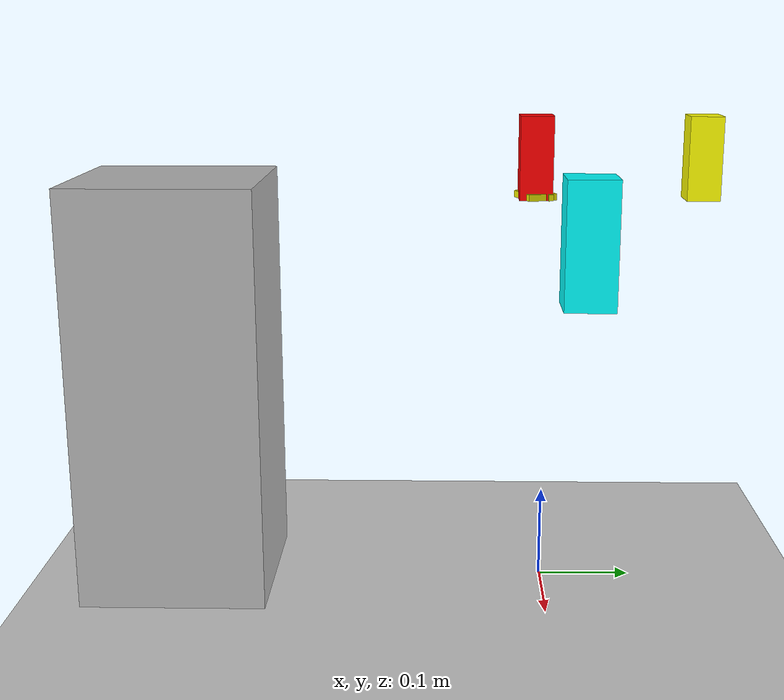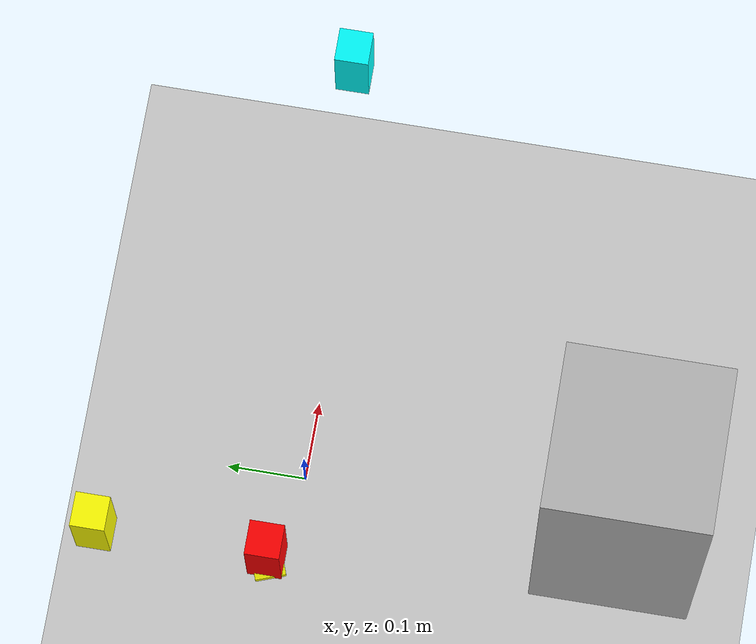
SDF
<sdf version="1.7">
 <world name="default">
  <plugin filename="ignition-gazebo-physics-system" name="ignition::gazebo::systems::Physics"/>
  <plugin filename="ignition-gazebo-user-commands-system" name="ignition::gazebo::systems::UserCommands"/>
  <plugin filename="ignition-gazebo-scene-broadcaster-system" name="ignition::gazebo::systems::SceneBroadcaster"/>
  <plugin filename="ignition-gazebo-sensors-system" name="ignition::gazebo::systems::Sensors">
   <render_engine>ogre2</render_engine>
  </plugin>
  <include><uri>https://fuel.gazebosim.org/1.0/OpenRobotics/models/Ground Plane</uri></include>
  <include><uri>https://fuel.gazebosim.org/1.0/OpenRobotics/models/Sun</uri></include>
  <model name="gb_box">
   <pose>0.4 0.0 0.45 0 0 0</pose>
   <static>false</static>
   <link name="link">
    <inertial>
     <mass>0.01</mass>
     <inertia>
      <ixx>0.000001</ixx>
      <ixy>0</ixy>
      <ixz>0</ixz>
      <iyy>0.000001</iyy>
      <iyz>0</iyz>
      <izz>0.000001</izz>
     </inertia>
    </inertial>
    <visual name="visual">
     <geometry><box><size>0.04 0.04 0.1</size></box></geometry>
     <material><ambient>0.0 1.0 1.0 1</ambient><diffuse>0.0 1.0 1.0 1</diffuse></material>
    </visual>
    <collision name="collision">
     <geometry><box><size>0.04 0.04 0.1</size></box></geometry>
     <surface>
      <friction>
       <ode><mu>1000.0</mu><mu2>1000.0</mu2><slip1>0.0</slip1><slip2>0.0</slip2><fdir1>0 0 1</fdir1></ode>
       <torsional>
        <coefficient>100.0</coefficient>
        <use_patch_radius>true</use_patch_radius>
        <patch_radius>0.1</patch_radius>
        <surface_radius>0.05</surface_radius>
       </torsional>
      </friction>
      <contact><ode><kp>1e8</kp><kd>1000</kd><max_vel>0.0</max_vel><min_depth>0.002</min_depth></ode></contact>
      <bounce><restitution_coefficient>0</restitution_coefficient><threshold>0</threshold></bounce>
     </surface>
    </collision>
   </link>
  </model>
  <model name="rg_box">
   <pose>-0.2 0.2 0.45 0 0 0</pose>
   <static>false</static>
   <link name="link">
    <inertial>
     <mass>0.01</mass>
     <inertia>
      <ixx>0.000001</ixx>
      <ixy>0</ixy>
      <ixz>0</ixz>
      <iyy>0.000001</iyy>
      <iyz>0</iyz>
      <izz>0.000001</izz>
     </inertia>
    </inertial>
    <visual name="visual">
     <geometry><box><size>0.04 0.04 0.1</size></box></geometry>
     <material><ambient>1.0 1.0 0.0 1</ambient><diffuse>1.0 1.0 0.0 1</diffuse></material>
    </visual>
    <collision name="collision">
     <geometry><box><size>0.04 0.04 0.1</size></box></geometry>
     <surface>
      <friction>
       <ode><mu>1000.0</mu><mu2>1000.0</mu2><slip1>0.0</slip1><slip2>0.0</slip2><fdir1>0 0 1</fdir1></ode>
       <torsional>
        <coefficient>100.0</coefficient>
        <use_patch_radius>true</use_patch_radius>
        <patch_radius>0.1</patch_radius>
        <surface_radius>0.05</surface_radius>
       </torsional>
      </friction>
      <contact><ode><kp>1e8</kp><kd>1000</kd><max_vel>0.0</max_vel><min_depth>0.002</min_depth></ode></contact>
      <bounce><restitution_coefficient>0</restitution_coefficient><threshold>0</threshold></bounce>
     </surface>
    </collision>
   </link>
  </model>
  <model name="faulty_box">
   <pose>-0.2 0.0 0.45 0 0 0</pose>
   <static>false</static>
   <link name="link">
    <inertial>
     <mass>0.01</mass>
     <inertia>
      <ixx>0.000001</ixx>
      <ixy>0</ixy>
      <ixz>0</ixz>
      <iyy>0.000001</iyy>
      <iyz>0</iyz>
      <izz>0.000001</izz>
     </inertia>
    </inertial>
    <visual name="visual">
     <geometry><box><size>0.04 0.04 0.1</size></box></geometry>
     <material><ambient>1.0 0.0 0.0 1</ambient><diffuse>1.0 0.0 0.0 1</diffuse></material>
    </visual>
    <visual name="warped_base">
     <pose>0 0 -0.046 0 0 0.35</pose>
     <geometry><box><size>0.046 0.036 0.008</size></box></geometry>
     <material><ambient>0.9 0.9 0.0 1</ambient><diffuse>0.9 0.9 0.0 1</diffuse></material>
    </visual>
    <visual name="corner_bump">
     <pose>0.017 0.017 -0.046 0 0 0.15</pose>
     <geometry><box><size>0.012 0.006 0.008</size></box></geometry>
     <material><ambient>0.85 0.85 0.0 1</ambient><diffuse>0.85 0.85 0.0 1</diffuse></material>
    </visual>
    <collision name="collision">
     <geometry><box><size>0.04 0.04 0.1</size></box></geometry>
     <surface>
      <friction>
       <ode><mu>1000.0</mu><mu2>1000.0</mu2><slip1>0.0</slip1><slip2>0.0</slip2><fdir1>0 0 1</fdir1></ode>
       <torsional>
        <coefficient>100.0</coefficient>
        <use_patch_radius>true</use_patch_radius>
        <patch_radius>0.1</patch_radius>
        <surface_radius>0.05</surface_radius>
       </torsional>
      </friction>
      <contact><ode><kp>1e8</kp><kd>1000</kd><max_vel>0.0</max_vel><min_depth>0.002</min_depth></ode></contact>
      <bounce><restitution_coefficient>0</restitution_coefficient><threshold>0</threshold></bounce>
     </surface>
    </collision>
   </link>
  </model>
  <model name="base_robot">
   <pose>0.0 -0.4 0.225 0 0 0</pose>
   <static>false</static>
   <link name="link">
    <inertial>
     <mass>0.01</mass>
     <inertia>
      <ixx>0.000001</ixx>
      <ixy>0</ixy>
      <ixz>0</ixz>
      <iyy>0.000001</iyy>
      <iyz>0</iyz>
      <izz>0.000001</izz>
     </inertia>
    </inertial>
    <visual name="visual"><geometry><box><size>0.2 0.2 0.45</size></box></geometry></visual>
    <collision name="collision"><geometry><box><size>0.2 0.2 0.45</size></box></geometry></collision>
   </link>
  </model>
  <physics type="ode">
   <max_step_size>0.001</max_step_size>
   <real_time_factor>1</real_time_factor>
   <real_time_update_rate>1000</real_time_update_rate>
   <gravity>0 0 -9.81</gravity>
  </physics>
 </world>
</sdf>
